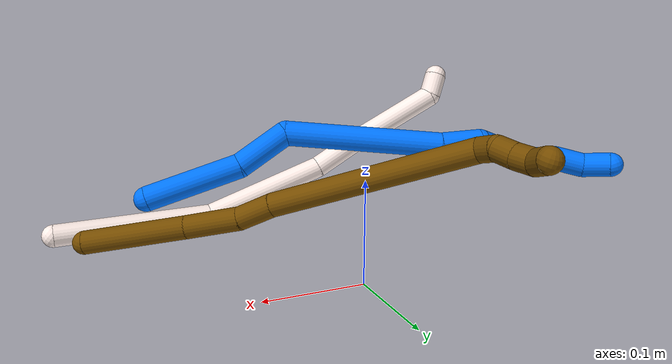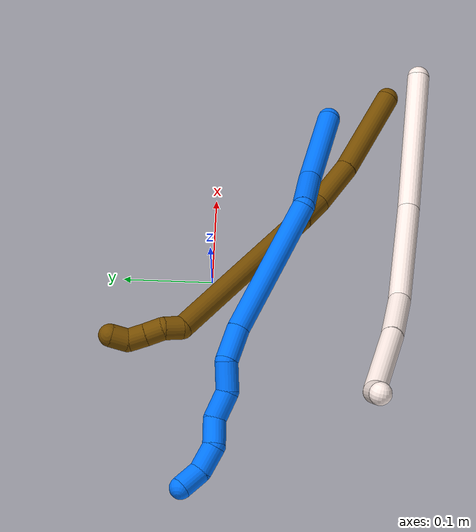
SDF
<sdf version="1.7">
 <world name="default">
  <model name="11">
   <static>0</static>
   <link name="11">
    <collision name="collision-cylinder-e_1_1_4">
     <pose>-0.055895 0.017651 0.062235 -0.276359 -0.712593 0.103423</pose>
     <geometry><cylinder><radius>0.0125</radius><length>0.170986</length></cylinder></geometry>
     <surface>
      <friction><ode><mu>1.16</mu><mu2>1.16</mu2><slip1>0</slip1><slip2>0</slip2></ode></friction>
      <contact><ode><kp>1e+06</kp><kd>1</kd><max_vel>0</max_vel><min_depth>0.001</min_depth></ode></contact>
     </surface>
    </collision>
    <visual name="visual-cylinder-e_1_1_4">
     <pose>-0.055895 0.017651 0.062235 -0.276359 -0.712593 0.103423</pose>
     <geometry><cylinder><radius>0.0125</radius><length>0.170986</length></cylinder></geometry>
     <material><ambient>1 0.933333 0.909804 1</ambient></material>
    </visual>
    <collision name="collision-cylinder-e_2_4_5">
     <pose>-0.171559 0.047039 0.158875 -0.328784 -1.02437 0.185999</pose>
     <geometry><cylinder><radius>0.0125</radius><length>0.139911</length></cylinder></geometry>
     <surface>
      <friction><ode><mu>1.16</mu><mu2>1.16</mu2><slip1>0</slip1><slip2>0</slip2></ode></friction>
      <contact><ode><kp>1e+06</kp><kd>1</kd><max_vel>0</max_vel><min_depth>0.001</min_depth></ode></contact>
     </surface>
    </collision>
    <visual name="visual-cylinder-e_2_4_5">
     <pose>-0.171559 0.047039 0.158875 -0.328784 -1.02437 0.185999</pose>
     <geometry><cylinder><radius>0.0125</radius><length>0.139911</length></cylinder></geometry>
     <material><ambient>1 0.933333 0.909804 1</ambient></material>
    </visual>
    <collision name="collision-cylinder-e_3_5_6">
     <pose>-0.262338 0.061699 0.203347 -0.282472 -1.24477 0.203332</pose>
     <geometry><cylinder><radius>0.0125</radius><length>0.065466</length></cylinder></geometry>
     <surface>
      <friction><ode><mu>1.16</mu><mu2>1.16</mu2><slip1>0</slip1><slip2>0</slip2></ode></friction>
      <contact><ode><kp>1e+06</kp><kd>1</kd><max_vel>0</max_vel><min_depth>0.001</min_depth></ode></contact>
     </surface>
    </collision>
    <visual name="visual-cylinder-e_3_5_6">
     <pose>-0.262338 0.061699 0.203347 -0.282472 -1.24477 0.203332</pose>
     <geometry><cylinder><radius>0.0125</radius><length>0.065466</length></cylinder></geometry>
     <material><ambient>1 0.933333 0.909804 1</ambient></material>
    </visual>
    <collision name="collision-cylinder-e_4_6_7">
     <pose>-0.338919 0.065734 0.230205 -0.066183 -1.21711 0.046123</pose>
     <geometry><cylinder><radius>0.0125</radius><length>0.097159</length></cylinder></geometry>
     <surface>
      <friction><ode><mu>1.16</mu><mu2>1.16</mu2><slip1>0</slip1><slip2>0</slip2></ode></friction>
      <contact><ode><kp>1e+06</kp><kd>1</kd><max_vel>0</max_vel><min_depth>0.001</min_depth></ode></contact>
     </surface>
    </collision>
    <visual name="visual-cylinder-e_4_6_7">
     <pose>-0.338919 0.065734 0.230205 -0.066183 -1.21711 0.046123</pose>
     <geometry><cylinder><radius>0.0125</radius><length>0.097159</length></cylinder></geometry>
     <material><ambient>1 0.933333 0.909804 1</ambient></material>
    </visual>
    <collision name="collision-cylinder-e_5_7_2">
     <pose>-0.396443 0.070774 0.242871 -2.38063 -1.1262 2.01209</pose>
     <geometry><cylinder><radius>0.0125</radius><length>0.026478</length></cylinder></geometry>
     <surface>
      <friction><ode><mu>1.16</mu><mu2>1.16</mu2><slip1>0</slip1><slip2>0</slip2></ode></friction>
      <contact><ode><kp>1e+06</kp><kd>1</kd><max_vel>0</max_vel><min_depth>0.001</min_depth></ode></contact>
     </surface>
    </collision>
    <visual name="visual-cylinder-e_5_7_2">
     <pose>-0.396443 0.070774 0.242871 -2.38063 -1.1262 2.01209</pose>
     <geometry><cylinder><radius>0.0125</radius><length>0.026478</length></cylinder></geometry>
     <material><ambient>1 0.933333 0.909804 1</ambient></material>
    </visual>
    <collision name="collision-sphere-2">
     <pose>-0.408395 0.0747 0.238747 0 -0 0</pose>
     <geometry><sphere><radius>0.0125</radius></sphere></geometry>
     <surface>
      <friction><ode><mu>1.16</mu><mu2>1.16</mu2><slip1>0</slip1><slip2>0</slip2></ode></friction>
      <contact><ode><kp>1e+06</kp><kd>1</kd><max_vel>0</max_vel><min_depth>0.001</min_depth></ode></contact>
     </surface>
    </collision>
    <visual name="visual-sphere-2">
     <pose>-0.408395 0.0747 0.238747 0 -0 0</pose>
     <geometry><sphere><radius>0.0125</radius></sphere></geometry>
     <material><ambient>1 0.933333 0.909804 1</ambient></material>
    </visual>
    <collision name="collision-sphere-7">
     <pose>-0.384491 0.066847 0.246994 0 -0 0</pose>
     <geometry><sphere><radius>0.0125</radius></sphere></geometry>
     <surface>
      <friction><ode><mu>1.16</mu><mu2>1.16</mu2><slip1>0</slip1><slip2>0</slip2></ode></friction>
      <contact><ode><kp>1e+06</kp><kd>1</kd><max_vel>0</max_vel><min_depth>0.001</min_depth></ode></contact>
     </surface>
    </collision>
    <visual name="visual-sphere-7">
     <pose>-0.384491 0.066847 0.246994 0 -0 0</pose>
     <geometry><sphere><radius>0.0125</radius></sphere></geometry>
     <material><ambient>1 0.933333 0.909804 1</ambient></material>
    </visual>
    <collision name="collision-sphere-6">
     <pose>-0.293347 0.064621 0.213416 0 -0 0</pose>
     <geometry><sphere><radius>0.0125</radius></sphere></geometry>
     <surface>
      <friction><ode><mu>1.16</mu><mu2>1.16</mu2><slip1>0</slip1><slip2>0</slip2></ode></friction>
      <contact><ode><kp>1e+06</kp><kd>1</kd><max_vel>0</max_vel><min_depth>0.001</min_depth></ode></contact>
     </surface>
    </collision>
    <visual name="visual-sphere-6">
     <pose>-0.293347 0.064621 0.213416 0 -0 0</pose>
     <geometry><sphere><radius>0.0125</radius></sphere></geometry>
     <material><ambient>1 0.933333 0.909804 1</ambient></material>
    </visual>
    <collision name="collision-sphere-5">
     <pose>-0.231329 0.058777 0.193279 0 -0 0</pose>
     <geometry><sphere><radius>0.0125</radius></sphere></geometry>
     <surface>
      <friction><ode><mu>1.16</mu><mu2>1.16</mu2><slip1>0</slip1><slip2>0</slip2></ode></friction>
      <contact><ode><kp>1e+06</kp><kd>1</kd><max_vel>0</max_vel><min_depth>0.001</min_depth></ode></contact>
     </surface>
    </collision>
    <visual name="visual-sphere-5">
     <pose>-0.231329 0.058777 0.193279 0 -0 0</pose>
     <geometry><sphere><radius>0.0125</radius></sphere></geometry>
     <material><ambient>1 0.933333 0.909804 1</ambient></material>
    </visual>
    <collision name="collision-sphere-1">
     <geometry><sphere><radius>0.0125</radius></sphere></geometry>
     <surface>
      <friction><ode><mu>1.16</mu><mu2>1.16</mu2><slip1>0</slip1><slip2>0</slip2></ode></friction>
      <contact><ode><kp>1e+06</kp><kd>1</kd><max_vel>0</max_vel><min_depth>0.001</min_depth></ode></contact>
     </surface>
    </collision>
    <visual name="visual-sphere-1">
     <geometry><sphere><radius>0.0125</radius></sphere></geometry>
     <material><ambient>1 0.933333 0.909804 1</ambient></material>
    </visual>
    <collision name="collision-sphere-4">
     <pose>-0.11179 0.035302 0.12447 0 -0 0</pose>
     <geometry><sphere><radius>0.0125</radius></sphere></geometry>
     <surface>
      <friction><ode><mu>1.16</mu><mu2>1.16</mu2><slip1>0</slip1><slip2>0</slip2></ode></friction>
      <contact><ode><kp>1e+06</kp><kd>1</kd><max_vel>0</max_vel><min_depth>0.001</min_depth></ode></contact>
     </surface>
    </collision>
    <visual name="visual-sphere-4">
     <pose>-0.11179 0.035302 0.12447 0 -0 0</pose>
     <geometry><sphere><radius>0.0125</radius></sphere></geometry>
     <material><ambient>1 0.933333 0.909804 1</ambient></material>
    </visual>
    <inertial>
     <pose>-0.188321 0.043798 0.149958 0 -0 0</pose>
     <mass>0.5</mass>
     <inertia>
      <ixx>0.000501</ixx>
      <ixy>0</ixy>
      <ixz>0</ixz>
      <iyy>0.000816</iyy>
      <iyz>0</iyz>
      <izz>0.000466</izz>
     </inertia>
    </inertial>
   </link>
   <pose>0.262865 -0.225222 0.011493 -3.1229 0.873516 -0.239446</pose>
  </model>
  <model name="12">
   <static>0</static>
   <link name="12">
    <collision name="collision-cylinder-e_1_1_4">
     <pose>-0.041719 0.027258 0.023173 -0.866234 -0.861925 0.418971</pose>
     <geometry><cylinder><radius>0.0125</radius><length>0.109916</length></cylinder></geometry>
     <surface>
      <friction><ode><mu>1.16</mu><mu2>1.16</mu2><slip1>0</slip1><slip2>0</slip2></ode></friction>
      <contact><ode><kp>1e+06</kp><kd>1</kd><max_vel>0</max_vel><min_depth>0.001</min_depth></ode></contact>
     </surface>
    </collision>
    <visual name="visual-cylinder-e_1_1_4">
     <pose>-0.041719 0.027258 0.023173 -0.866234 -0.861925 0.418971</pose>
     <geometry><cylinder><radius>0.0125</radius><length>0.109916</length></cylinder></geometry>
     <material><ambient>0.466667 0.301961 0 1</ambient></material>
    </visual>
    <collision name="collision-cylinder-e_2_4_5">
     <pose>-0.103196 0.071302 0.060036 -0.886611 -0.739498 0.363987</pose>
     <geometry><cylinder><radius>0.0125</radius><length>0.058638</length></cylinder></geometry>
     <surface>
      <friction><ode><mu>1.16</mu><mu2>1.16</mu2><slip1>0</slip1><slip2>0</slip2></ode></friction>
      <contact><ode><kp>1e+06</kp><kd>1</kd><max_vel>0</max_vel><min_depth>0.001</min_depth></ode></contact>
     </surface>
    </collision>
    <visual name="visual-cylinder-e_2_4_5">
     <pose>-0.103196 0.071302 0.060036 -0.886611 -0.739498 0.363987</pose>
     <geometry><cylinder><radius>0.0125</radius><length>0.058638</length></cylinder></geometry>
     <material><ambient>0.466667 0.301961 0 1</ambient></material>
    </visual>
    <collision name="collision-cylinder-e_3_5_6">
     <pose>-0.133645 0.09762 0.086154 -0.654311 -0.598927 0.208786</pose>
     <geometry><cylinder><radius>0.0125</radius><length>0.037927</length></cylinder></geometry>
     <surface>
      <friction><ode><mu>1.16</mu><mu2>1.16</mu2><slip1>0</slip1><slip2>0</slip2></ode></friction>
      <contact><ode><kp>1e+06</kp><kd>1</kd><max_vel>0</max_vel><min_depth>0.001</min_depth></ode></contact>
     </surface>
    </collision>
    <visual name="visual-cylinder-e_3_5_6">
     <pose>-0.133645 0.09762 0.086154 -0.654311 -0.598927 0.208786</pose>
     <geometry><cylinder><radius>0.0125</radius><length>0.037927</length></cylinder></geometry>
     <material><ambient>0.466667 0.301961 0 1</ambient></material>
    </visual>
    <collision name="collision-cylinder-e_4_6_7">
     <pose>-0.204129 0.171097 0.159007 -0.813688 -0.596932 0.263591</pose>
     <geometry><cylinder><radius>0.0125</radius><length>0.212747</length></cylinder></geometry>
     <surface>
      <friction><ode><mu>1.16</mu><mu2>1.16</mu2><slip1>0</slip1><slip2>0</slip2></ode></friction>
      <contact><ode><kp>1e+06</kp><kd>1</kd><max_vel>0</max_vel><min_depth>0.001</min_depth></ode></contact>
     </surface>
    </collision>
    <visual name="visual-cylinder-e_4_6_7">
     <pose>-0.204129 0.171097 0.159007 -0.813688 -0.596932 0.263591</pose>
     <geometry><cylinder><radius>0.0125</radius><length>0.212747</length></cylinder></geometry>
     <material><ambient>0.466667 0.301961 0 1</ambient></material>
    </visual>
    <collision name="collision-cylinder-e_5_7_8">
     <pose>-0.263324 0.244188 0.223896 -1.1168 0.058694 -0.036674</pose>
     <geometry><cylinder><radius>0.0125</radius><length>0.020391</length></cylinder></geometry>
     <surface>
      <friction><ode><mu>1.16</mu><mu2>1.16</mu2><slip1>0</slip1><slip2>0</slip2></ode></friction>
      <contact><ode><kp>1e+06</kp><kd>1</kd><max_vel>0</max_vel><min_depth>0.001</min_depth></ode></contact>
     </surface>
    </collision>
    <visual name="visual-cylinder-e_5_7_8">
     <pose>-0.263324 0.244188 0.223896 -1.1168 0.058694 -0.036674</pose>
     <geometry><cylinder><radius>0.0125</radius><length>0.020391</length></cylinder></geometry>
     <material><ambient>0.466667 0.301961 0 1</ambient></material>
    </visual>
    <collision name="collision-cylinder-e_6_8_9">
     <pose>-0.264418 0.26325 0.228738 -1.53259 -0.168865 0.162561</pose>
     <geometry><cylinder><radius>0.0125</radius><length>0.02013</length></cylinder></geometry>
     <surface>
      <friction><ode><mu>1.16</mu><mu2>1.16</mu2><slip1>0</slip1><slip2>0</slip2></ode></friction>
      <contact><ode><kp>1e+06</kp><kd>1</kd><max_vel>0</max_vel><min_depth>0.001</min_depth></ode></contact>
     </surface>
    </collision>
    <visual name="visual-cylinder-e_6_8_9">
     <pose>-0.264418 0.26325 0.228738 -1.53259 -0.168865 0.162561</pose>
     <geometry><cylinder><radius>0.0125</radius><length>0.02013</length></cylinder></geometry>
     <material><ambient>0.466667 0.301961 0 1</ambient></material>
    </visual>
    <collision name="collision-cylinder-e_7_9_10">
     <pose>-0.267581 0.283003 0.2304 -1.44112 -0.147268 0.129364</pose>
     <geometry><cylinder><radius>0.0125</radius><length>0.02006</length></cylinder></geometry>
     <surface>
      <friction><ode><mu>1.16</mu><mu2>1.16</mu2><slip1>0</slip1><slip2>0</slip2></ode></friction>
      <contact><ode><kp>1e+06</kp><kd>1</kd><max_vel>0</max_vel><min_depth>0.001</min_depth></ode></contact>
     </surface>
    </collision>
    <visual name="visual-cylinder-e_7_9_10">
     <pose>-0.267581 0.283003 0.2304 -1.44112 -0.147268 0.129364</pose>
     <geometry><cylinder><radius>0.0125</radius><length>0.02006</length></cylinder></geometry>
     <material><ambient>0.466667 0.301961 0 1</ambient></material>
    </visual>
    <collision name="collision-cylinder-e_8_10_2">
     <pose>-0.265347 0.301201 0.23596 -1.09797 0.375877 -0.231632</pose>
     <geometry><cylinder><radius>0.0125</radius><length>0.020191</length></cylinder></geometry>
     <surface>
      <friction><ode><mu>1.16</mu><mu2>1.16</mu2><slip1>0</slip1><slip2>0</slip2></ode></friction>
      <contact><ode><kp>1e+06</kp><kd>1</kd><max_vel>0</max_vel><min_depth>0.001</min_depth></ode></contact>
     </surface>
    </collision>
    <visual name="visual-cylinder-e_8_10_2">
     <pose>-0.265347 0.301201 0.23596 -1.09797 0.375877 -0.231632</pose>
     <geometry><cylinder><radius>0.0125</radius><length>0.020191</length></cylinder></geometry>
     <material><ambient>0.466667 0.301961 0 1</ambient></material>
    </visual>
    <collision name="collision-sphere-2">
     <pose>-0.261641 0.309562 0.240236 0 -0 0</pose>
     <geometry><sphere><radius>0.0125</radius></sphere></geometry>
     <surface>
      <friction><ode><mu>1.16</mu><mu2>1.16</mu2><slip1>0</slip1><slip2>0</slip2></ode></friction>
      <contact><ode><kp>1e+06</kp><kd>1</kd><max_vel>0</max_vel><min_depth>0.001</min_depth></ode></contact>
     </surface>
    </collision>
    <visual name="visual-sphere-2">
     <pose>-0.261641 0.309562 0.240236 0 -0 0</pose>
     <geometry><sphere><radius>0.0125</radius></sphere></geometry>
     <material><ambient>0.466667 0.301961 0 1</ambient></material>
    </visual>
    <collision name="collision-sphere-10">
     <pose>-0.269053 0.292841 0.231683 0 -0 0</pose>
     <geometry><sphere><radius>0.0125</radius></sphere></geometry>
     <surface>
      <friction><ode><mu>1.16</mu><mu2>1.16</mu2><slip1>0</slip1><slip2>0</slip2></ode></friction>
      <contact><ode><kp>1e+06</kp><kd>1</kd><max_vel>0</max_vel><min_depth>0.001</min_depth></ode></contact>
     </surface>
    </collision>
    <visual name="visual-sphere-10">
     <pose>-0.269053 0.292841 0.231683 0 -0 0</pose>
     <geometry><sphere><radius>0.0125</radius></sphere></geometry>
     <material><ambient>0.466667 0.301961 0 1</ambient></material>
    </visual>
    <collision name="collision-sphere-9">
     <pose>-0.266109 0.273164 0.229117 0 -0 0</pose>
     <geometry><sphere><radius>0.0125</radius></sphere></geometry>
     <surface>
      <friction><ode><mu>1.16</mu><mu2>1.16</mu2><slip1>0</slip1><slip2>0</slip2></ode></friction>
      <contact><ode><kp>1e+06</kp><kd>1</kd><max_vel>0</max_vel><min_depth>0.001</min_depth></ode></contact>
     </surface>
    </collision>
    <visual name="visual-sphere-9">
     <pose>-0.266109 0.273164 0.229117 0 -0 0</pose>
     <geometry><sphere><radius>0.0125</radius></sphere></geometry>
     <material><ambient>0.466667 0.301961 0 1</ambient></material>
    </visual>
    <collision name="collision-sphere-4">
     <pose>-0.083437 0.054516 0.046345 0 -0 0</pose>
     <geometry><sphere><radius>0.0125</radius></sphere></geometry>
     <surface>
      <friction><ode><mu>1.16</mu><mu2>1.16</mu2><slip1>0</slip1><slip2>0</slip2></ode></friction>
      <contact><ode><kp>1e+06</kp><kd>1</kd><max_vel>0</max_vel><min_depth>0.001</min_depth></ode></contact>
     </surface>
    </collision>
    <visual name="visual-sphere-4">
     <pose>-0.083437 0.054516 0.046345 0 -0 0</pose>
     <geometry><sphere><radius>0.0125</radius></sphere></geometry>
     <material><ambient>0.466667 0.301961 0 1</ambient></material>
    </visual>
    <collision name="collision-sphere-1">
     <geometry><sphere><radius>0.0125</radius></sphere></geometry>
     <surface>
      <friction><ode><mu>1.16</mu><mu2>1.16</mu2><slip1>0</slip1><slip2>0</slip2></ode></friction>
      <contact><ode><kp>1e+06</kp><kd>1</kd><max_vel>0</max_vel><min_depth>0.001</min_depth></ode></contact>
     </surface>
    </collision>
    <visual name="visual-sphere-1">
     <geometry><sphere><radius>0.0125</radius></sphere></geometry>
     <material><ambient>0.466667 0.301961 0 1</ambient></material>
    </visual>
    <collision name="collision-sphere-8">
     <pose>-0.262726 0.253335 0.228359 0 -0 0</pose>
     <geometry><sphere><radius>0.0125</radius></sphere></geometry>
     <surface>
      <friction><ode><mu>1.16</mu><mu2>1.16</mu2><slip1>0</slip1><slip2>0</slip2></ode></friction>
      <contact><ode><kp>1e+06</kp><kd>1</kd><max_vel>0</max_vel><min_depth>0.001</min_depth></ode></contact>
     </surface>
    </collision>
    <visual name="visual-sphere-8">
     <pose>-0.262726 0.253335 0.228359 0 -0 0</pose>
     <geometry><sphere><radius>0.0125</radius></sphere></geometry>
     <material><ambient>0.466667 0.301961 0 1</ambient></material>
    </visual>
    <collision name="collision-sphere-5">
     <pose>-0.122954 0.088088 0.073726 0 -0 0</pose>
     <geometry><sphere><radius>0.0125</radius></sphere></geometry>
     <surface>
      <friction><ode><mu>1.16</mu><mu2>1.16</mu2><slip1>0</slip1><slip2>0</slip2></ode></friction>
      <contact><ode><kp>1e+06</kp><kd>1</kd><max_vel>0</max_vel><min_depth>0.001</min_depth></ode></contact>
     </surface>
    </collision>
    <visual name="visual-sphere-5">
     <pose>-0.122954 0.088088 0.073726 0 -0 0</pose>
     <geometry><sphere><radius>0.0125</radius></sphere></geometry>
     <material><ambient>0.466667 0.301961 0 1</ambient></material>
    </visual>
    <collision name="collision-sphere-6">
     <pose>-0.144336 0.107153 0.098582 0 -0 0</pose>
     <geometry><sphere><radius>0.0125</radius></sphere></geometry>
     <surface>
      <friction><ode><mu>1.16</mu><mu2>1.16</mu2><slip1>0</slip1><slip2>0</slip2></ode></friction>
      <contact><ode><kp>1e+06</kp><kd>1</kd><max_vel>0</max_vel><min_depth>0.001</min_depth></ode></contact>
     </surface>
    </collision>
    <visual name="visual-sphere-6">
     <pose>-0.144336 0.107153 0.098582 0 -0 0</pose>
     <geometry><sphere><radius>0.0125</radius></sphere></geometry>
     <material><ambient>0.466667 0.301961 0 1</ambient></material>
    </visual>
    <collision name="collision-sphere-7">
     <pose>-0.263922 0.235041 0.219432 0 -0 0</pose>
     <geometry><sphere><radius>0.0125</radius></sphere></geometry>
     <surface>
      <friction><ode><mu>1.16</mu><mu2>1.16</mu2><slip1>0</slip1><slip2>0</slip2></ode></friction>
      <contact><ode><kp>1e+06</kp><kd>1</kd><max_vel>0</max_vel><min_depth>0.001</min_depth></ode></contact>
     </surface>
    </collision>
    <visual name="visual-sphere-7">
     <pose>-0.263922 0.235041 0.219432 0 -0 0</pose>
     <geometry><sphere><radius>0.0125</radius></sphere></geometry>
     <material><ambient>0.466667 0.301961 0 1</ambient></material>
    </visual>
    <inertial>
     <pose>-0.161101 0.138634 0.123439 0 -0 0</pose>
     <mass>0.5</mass>
     <inertia><ixx>0.00093</ixx><ixy>0</ixy><ixz>0</ixz><iyy>0.000976</iyy><iyz>0</iyz><izz>1.4e-05</izz></inertia>
    </inertial>
   </link>
   <pose>0.233453 -0.189822 0.0115 -0.216871 -0.182201 0.198464</pose>
  </model>
  <model name="14">
   <static>0</static>
   <link name="14">
    <collision name="collision-cylinder-e_1_1_4">
     <pose>-0.00046 -0.000427 0.047963 0.008893 -0.009581 -4.3e-05</pose>
     <geometry><cylinder><radius>0.0125</radius><length>0.095934</length></cylinder></geometry>
     <surface>
      <friction><ode><mu>1.16</mu><mu2>1.16</mu2><slip1>0</slip1><slip2>0</slip2></ode></friction>
      <contact><ode><kp>1e+06</kp><kd>1</kd><max_vel>0</max_vel><min_depth>0.001</min_depth></ode></contact>
     </surface>
    </collision>
    <visual name="visual-cylinder-e_1_1_4">
     <pose>-0.00046 -0.000427 0.047963 0.008893 -0.009581 -4.3e-05</pose>
     <geometry><cylinder><radius>0.0125</radius><length>0.095934</length></cylinder></geometry>
     <material><ambient>0 0.462745 1 1</ambient></material>
    </visual>
    <collision name="collision-cylinder-e_2_4_5">
     <pose>0.006535 -0.000362 0.122753 -0.018298 0.270971 -0.002494</pose>
     <geometry><cylinder><radius>0.0125</radius><length>0.055694</length></cylinder></geometry>
     <surface>
      <friction><ode><mu>1.16</mu><mu2>1.16</mu2><slip1>0</slip1><slip2>0</slip2></ode></friction>
      <contact><ode><kp>1e+06</kp><kd>1</kd><max_vel>0</max_vel><min_depth>0.001</min_depth></ode></contact>
     </surface>
    </collision>
    <visual name="visual-cylinder-e_2_4_5">
     <pose>0.006535 -0.000362 0.122753 -0.018298 0.270971 -0.002494</pose>
     <geometry><cylinder><radius>0.0125</radius><length>0.055694</length></cylinder></geometry>
     <material><ambient>0 0.462745 1 1</ambient></material>
    </visual>
    <collision name="collision-cylinder-e_3_5_6">
     <pose>-0.019152 0.005748 0.219658 -0.080019 -0.440496 0.017924</pose>
     <geometry><cylinder><radius>0.0125</radius><length>0.155447</length></cylinder></geometry>
     <surface>
      <friction><ode><mu>1.16</mu><mu2>1.16</mu2><slip1>0</slip1><slip2>0</slip2></ode></friction>
      <contact><ode><kp>1e+06</kp><kd>1</kd><max_vel>0</max_vel><min_depth>0.001</min_depth></ode></contact>
     </surface>
    </collision>
    <visual name="visual-cylinder-e_3_5_6">
     <pose>-0.019152 0.005748 0.219658 -0.080019 -0.440496 0.017924</pose>
     <geometry><cylinder><radius>0.0125</radius><length>0.155447</length></cylinder></geometry>
     <material><ambient>0 0.462745 1 1</ambient></material>
    </visual>
    <collision name="collision-cylinder-e_4_6_7">
     <pose>-0.057418 0.010718 0.309179 0.033433 -0.257623 -0.004331</pose>
     <geometry><cylinder><radius>0.0125</radius><length>0.040233</length></cylinder></geometry>
     <surface>
      <friction><ode><mu>1.16</mu><mu2>1.16</mu2><slip1>0</slip1><slip2>0</slip2></ode></friction>
      <contact><ode><kp>1e+06</kp><kd>1</kd><max_vel>0</max_vel><min_depth>0.001</min_depth></ode></contact>
     </surface>
    </collision>
    <visual name="visual-cylinder-e_4_6_7">
     <pose>-0.057418 0.010718 0.309179 0.033433 -0.257623 -0.004331</pose>
     <geometry><cylinder><radius>0.0125</radius><length>0.040233</length></cylinder></geometry>
     <material><ambient>0 0.462745 1 1</ambient></material>
    </visual>
    <collision name="collision-cylinder-e_5_7_8">
     <pose>-0.070492 0.002542 0.340445 0.566822 -0.515893 -0.153377</pose>
     <geometry><cylinder><radius>0.0125</radius><length>0.032225</length></cylinder></geometry>
     <surface>
      <friction><ode><mu>1.16</mu><mu2>1.16</mu2><slip1>0</slip1><slip2>0</slip2></ode></friction>
      <contact><ode><kp>1e+06</kp><kd>1</kd><max_vel>0</max_vel><min_depth>0.001</min_depth></ode></contact>
     </surface>
    </collision>
    <visual name="visual-cylinder-e_5_7_8">
     <pose>-0.070492 0.002542 0.340445 0.566822 -0.515893 -0.153377</pose>
     <geometry><cylinder><radius>0.0125</radius><length>0.032225</length></cylinder></geometry>
     <material><ambient>0 0.462745 1 1</ambient></material>
    </visual>
    <collision name="collision-cylinder-e_6_8_9">
     <pose>-0.088455 -0.005309 0.364677 0.026171 -0.678892 -0.009242</pose>
     <geometry><cylinder><radius>0.0125</radius><length>0.031898</length></cylinder></geometry>
     <surface>
      <friction><ode><mu>1.16</mu><mu2>1.16</mu2><slip1>0</slip1><slip2>0</slip2></ode></friction>
      <contact><ode><kp>1e+06</kp><kd>1</kd><max_vel>0</max_vel><min_depth>0.001</min_depth></ode></contact>
     </surface>
    </collision>
    <visual name="visual-cylinder-e_6_8_9">
     <pose>-0.088455 -0.005309 0.364677 0.026171 -0.678892 -0.009242</pose>
     <geometry><cylinder><radius>0.0125</radius><length>0.031898</length></cylinder></geometry>
     <material><ambient>0 0.462745 1 1</ambient></material>
    </visual>
    <collision name="collision-cylinder-e_7_9_10">
     <pose>-0.101872 -0.010675 0.391036 0.34679 -0.225444 -0.03965</pose>
     <geometry><cylinder><radius>0.0125</radius><length>0.030438</length></cylinder></geometry>
     <surface>
      <friction><ode><mu>1.16</mu><mu2>1.16</mu2><slip1>0</slip1><slip2>0</slip2></ode></friction>
      <contact><ode><kp>1e+06</kp><kd>1</kd><max_vel>0</max_vel><min_depth>0.001</min_depth></ode></contact>
     </surface>
    </collision>
    <visual name="visual-cylinder-e_7_9_10">
     <pose>-0.101872 -0.010675 0.391036 0.34679 -0.225444 -0.03965</pose>
     <geometry><cylinder><radius>0.0125</radius><length>0.030438</length></cylinder></geometry>
     <material><ambient>0 0.462745 1 1</ambient></material>
    </visual>
    <collision name="collision-cylinder-e_8_10_11">
     <pose>-0.113998 -0.0148 0.417365 -0.073948 -0.61265 0.023398</pose>
     <geometry><cylinder><radius>0.0125</radius><length>0.030343</length></cylinder></geometry>
     <surface>
      <friction><ode><mu>1.16</mu><mu2>1.16</mu2><slip1>0</slip1><slip2>0</slip2></ode></friction>
      <contact><ode><kp>1e+06</kp><kd>1</kd><max_vel>0</max_vel><min_depth>0.001</min_depth></ode></contact>
     </surface>
    </collision>
    <visual name="visual-cylinder-e_8_10_11">
     <pose>-0.113998 -0.0148 0.417365 -0.073948 -0.61265 0.023398</pose>
     <geometry><cylinder><radius>0.0125</radius><length>0.030343</length></cylinder></geometry>
     <material><ambient>0 0.462745 1 1</ambient></material>
    </visual>
    <collision name="collision-cylinder-e_9_11_2">
     <pose>-0.127539 -0.007818 0.441278 -0.484083 -0.354035 0.088272</pose>
     <geometry><cylinder><radius>0.0125</radius><length>0.027787</length></cylinder></geometry>
     <surface>
      <friction><ode><mu>1.16</mu><mu2>1.16</mu2><slip1>0</slip1><slip2>0</slip2></ode></friction>
      <contact><ode><kp>1e+06</kp><kd>1</kd><max_vel>0</max_vel><min_depth>0.001</min_depth></ode></contact>
     </surface>
    </collision>
    <visual name="visual-cylinder-e_9_11_2">
     <pose>-0.127539 -0.007818 0.441278 -0.484083 -0.354035 0.088272</pose>
     <geometry><cylinder><radius>0.0125</radius><length>0.027787</length></cylinder></geometry>
     <material><ambient>0 0.462745 1 1</ambient></material>
    </visual>
    <collision name="collision-sphere-2">
     <pose>-0.132356 -0.001753 0.452812 0 -0 0</pose>
     <geometry><sphere><radius>0.0125</radius></sphere></geometry>
     <surface>
      <friction><ode><mu>1.16</mu><mu2>1.16</mu2><slip1>0</slip1><slip2>0</slip2></ode></friction>
      <contact><ode><kp>1e+06</kp><kd>1</kd><max_vel>0</max_vel><min_depth>0.001</min_depth></ode></contact>
     </surface>
    </collision>
    <visual name="visual-sphere-2">
     <pose>-0.132356 -0.001753 0.452812 0 -0 0</pose>
     <geometry><sphere><radius>0.0125</radius></sphere></geometry>
     <material><ambient>0 0.462745 1 1</ambient></material>
    </visual>
    <collision name="collision-sphere-11">
     <pose>-0.122722 -0.013883 0.429743 0 -0 0</pose>
     <geometry><sphere><radius>0.0125</radius></sphere></geometry>
     <surface>
      <friction><ode><mu>1.16</mu><mu2>1.16</mu2><slip1>0</slip1><slip2>0</slip2></ode></friction>
      <contact><ode><kp>1e+06</kp><kd>1</kd><max_vel>0</max_vel><min_depth>0.001</min_depth></ode></contact>
     </surface>
    </collision>
    <visual name="visual-sphere-11">
     <pose>-0.122722 -0.013883 0.429743 0 -0 0</pose>
     <geometry><sphere><radius>0.0125</radius></sphere></geometry>
     <material><ambient>0 0.462745 1 1</ambient></material>
    </visual>
    <collision name="collision-sphere-10">
     <pose>-0.105274 -0.015717 0.404987 0 -0 0</pose>
     <geometry><sphere><radius>0.0125</radius></sphere></geometry>
     <surface>
      <friction><ode><mu>1.16</mu><mu2>1.16</mu2><slip1>0</slip1><slip2>0</slip2></ode></friction>
      <contact><ode><kp>1e+06</kp><kd>1</kd><max_vel>0</max_vel><min_depth>0.001</min_depth></ode></contact>
     </surface>
    </collision>
    <visual name="visual-sphere-10">
     <pose>-0.105274 -0.015717 0.404987 0 -0 0</pose>
     <geometry><sphere><radius>0.0125</radius></sphere></geometry>
     <material><ambient>0 0.462745 1 1</ambient></material>
    </visual>
    <collision name="collision-sphere-9">
     <pose>-0.09847 -0.005634 0.377085 0 -0 0</pose>
     <geometry><sphere><radius>0.0125</radius></sphere></geometry>
     <surface>
      <friction><ode><mu>1.16</mu><mu2>1.16</mu2><slip1>0</slip1><slip2>0</slip2></ode></friction>
      <contact><ode><kp>1e+06</kp><kd>1</kd><max_vel>0</max_vel><min_depth>0.001</min_depth></ode></contact>
     </surface>
    </collision>
    <visual name="visual-sphere-9">
     <pose>-0.09847 -0.005634 0.377085 0 -0 0</pose>
     <geometry><sphere><radius>0.0125</radius></sphere></geometry>
     <material><ambient>0 0.462745 1 1</ambient></material>
    </visual>
    <collision name="collision-sphere-4">
     <pose>-0.000919 -0.000853 0.095926 0 -0 0</pose>
     <geometry><sphere><radius>0.0125</radius></sphere></geometry>
     <surface>
      <friction><ode><mu>1.16</mu><mu2>1.16</mu2><slip1>0</slip1><slip2>0</slip2></ode></friction>
      <contact><ode><kp>1e+06</kp><kd>1</kd><max_vel>0</max_vel><min_depth>0.001</min_depth></ode></contact>
     </surface>
    </collision>
    <visual name="visual-sphere-4">
     <pose>-0.000919 -0.000853 0.095926 0 -0 0</pose>
     <geometry><sphere><radius>0.0125</radius></sphere></geometry>
     <material><ambient>0 0.462745 1 1</ambient></material>
    </visual>
    <collision name="collision-sphere-1">
     <geometry><sphere><radius>0.0125</radius></sphere></geometry>
     <surface>
      <friction><ode><mu>1.16</mu><mu2>1.16</mu2><slip1>0</slip1><slip2>0</slip2></ode></friction>
      <contact><ode><kp>1e+06</kp><kd>1</kd><max_vel>0</max_vel><min_depth>0.001</min_depth></ode></contact>
     </surface>
    </collision>
    <visual name="visual-sphere-1">
     <geometry><sphere><radius>0.0125</radius></sphere></geometry>
     <material><ambient>0 0.462745 1 1</ambient></material>
    </visual>
    <collision name="collision-sphere-8">
     <pose>-0.07844 -0.004984 0.352268 0 -0 0</pose>
     <geometry><sphere><radius>0.0125</radius></sphere></geometry>
     <surface>
      <friction><ode><mu>1.16</mu><mu2>1.16</mu2><slip1>0</slip1><slip2>0</slip2></ode></friction>
      <contact><ode><kp>1e+06</kp><kd>1</kd><max_vel>0</max_vel><min_depth>0.001</min_depth></ode></contact>
     </surface>
    </collision>
    <visual name="visual-sphere-8">
     <pose>-0.07844 -0.004984 0.352268 0 -0 0</pose>
     <geometry><sphere><radius>0.0125</radius></sphere></geometry>
     <material><ambient>0 0.462745 1 1</ambient></material>
    </visual>
    <collision name="collision-sphere-5">
     <pose>0.013988 0.000129 0.149579 0 -0 0</pose>
     <geometry><sphere><radius>0.0125</radius></sphere></geometry>
     <surface>
      <friction><ode><mu>1.16</mu><mu2>1.16</mu2><slip1>0</slip1><slip2>0</slip2></ode></friction>
      <contact><ode><kp>1e+06</kp><kd>1</kd><max_vel>0</max_vel><min_depth>0.001</min_depth></ode></contact>
     </surface>
    </collision>
    <visual name="visual-sphere-5">
     <pose>0.013988 0.000129 0.149579 0 -0 0</pose>
     <geometry><sphere><radius>0.0125</radius></sphere></geometry>
     <material><ambient>0 0.462745 1 1</ambient></material>
    </visual>
    <collision name="collision-sphere-6">
     <pose>-0.052292 0.011368 0.289737 0 -0 0</pose>
     <geometry><sphere><radius>0.0125</radius></sphere></geometry>
     <surface>
      <friction><ode><mu>1.16</mu><mu2>1.16</mu2><slip1>0</slip1><slip2>0</slip2></ode></friction>
      <contact><ode><kp>1e+06</kp><kd>1</kd><max_vel>0</max_vel><min_depth>0.001</min_depth></ode></contact>
     </surface>
    </collision>
    <visual name="visual-sphere-6">
     <pose>-0.052292 0.011368 0.289737 0 -0 0</pose>
     <geometry><sphere><radius>0.0125</radius></sphere></geometry>
     <material><ambient>0 0.462745 1 1</ambient></material>
    </visual>
    <collision name="collision-sphere-7">
     <pose>-0.062543 0.010068 0.328621 0 -0 0</pose>
     <geometry><sphere><radius>0.0125</radius></sphere></geometry>
     <surface>
      <friction><ode><mu>1.16</mu><mu2>1.16</mu2><slip1>0</slip1><slip2>0</slip2></ode></friction>
      <contact><ode><kp>1e+06</kp><kd>1</kd><max_vel>0</max_vel><min_depth>0.001</min_depth></ode></contact>
     </surface>
    </collision>
    <visual name="visual-sphere-7">
     <pose>-0.062543 0.010068 0.328621 0 -0 0</pose>
     <geometry><sphere><radius>0.0125</radius></sphere></geometry>
     <material><ambient>0 0.462745 1 1</ambient></material>
    </visual>
    <inertial>
     <pose>-0.040328 0.00037 0.234908 0 -0 0</pose>
     <mass>0.5</mass>
     <inertia>
      <ixx>0.000399</ixx>
      <ixy>0</ixy>
      <ixz>0</ixz>
      <iyy>0.000441</iyy>
      <iyz>0</iyz>
      <izz>0.000157</izz>
     </inertia>
    </inertial>
   </link>
   <pose>0.175983 -0.123422 0.070366 0.811581 -1.09769 -1.07863</pose>
  </model>
 </world>
</sdf>
